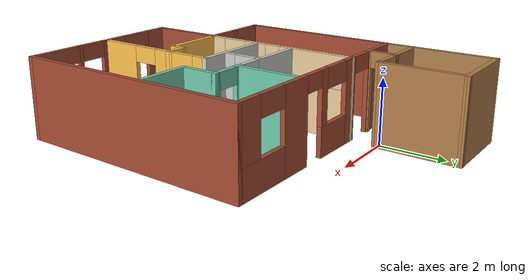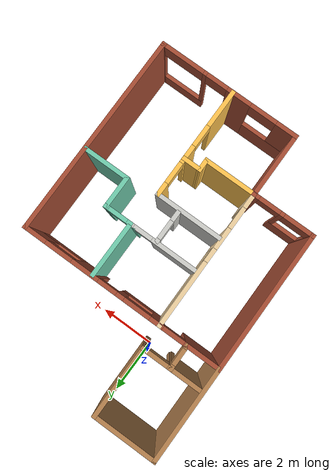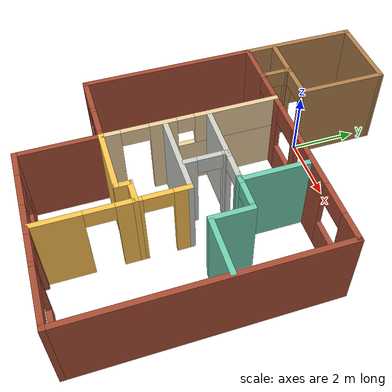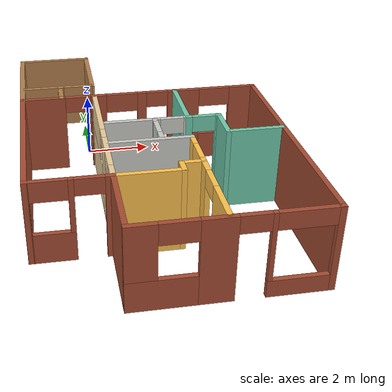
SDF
<?xml version='1.0'?>
<sdf version='1.6'>
  <model name='Building'>
    <pose frame=''>1.6411 -2.93 0 0 -0 0</pose>
    <link name='Wall_101'>
      <collision name='Wall_101_Collision'>
        <geometry>
          <box>
            <size>3.5 0.15 2.5</size>
          </box>
        </geometry>
        <pose frame=''>0 0 1.25 0 -0 0</pose>
      </collision>
      <visual name='Wall_101_Visual'>
        <pose frame=''>0 0 1.25 0 -0 0</pose>
        <geometry>
          <box>
            <size>3.5 0.15 2.5</size>
          </box>
        </geometry>
        <material>
          <script>
            <uri>file://media/materials/scripts/gazebo.material</uri>
            <name>Gazebo/Wood</name>
          </script>
          <ambient>1 1 1 1</ambient>
        </material>
        <meta>
          <layer>0</layer>
        </meta>
      </visual>
      <pose frame=''>-3.72481 3.67494 0 0 -0 1.5708</pose>
    </link>
    <link name='Wall_107'>
      <collision name='Wall_107_Collision'>
        <geometry>
          <box>
            <size>2.39871 0.15 2.5</size>
          </box>
        </geometry>
        <pose frame=''>0 0 1.25 0 -0 0</pose>
      </collision>
      <visual name='Wall_107_Visual'>
        <pose frame=''>0 0 1.25 0 -0 0</pose>
        <geometry>
          <box>
            <size>2.39871 0.15 2.5</size>
          </box>
        </geometry>
        <material>
          <script>
            <uri>file://media/materials/scripts/gazebo.material</uri>
            <name>Gazebo/Wood</name>
          </script>
          <ambient>1 1 1 1</ambient>
        </material>
        <meta>
          <layer>0</layer>
        </meta>
      </visual>
      <pose frame=''>-2.60045 5.34997 0 0 -0 2.5e-05</pose>
    </link>
    <link name='Wall_109'>
      <pose frame=''>-2.5181 2.433 0 0 -0 1.5708</pose>
      <visual name='Wall_109_Visual_0'>
        <pose frame=''>-0.406862 0 1.25 0 -0 0</pose>
        <geometry>
          <box>
            <size>0.186276 0.15 2.5</size>
          </box>
        </geometry>
        <material>
          <script>
            <uri>file://media/materials/scripts/gazebo.material</uri>
            <name>Gazebo/Wood</name>
          </script>
          <ambient>1 1 1 1</ambient>
        </material>
        <meta>
          <layer>0</layer>
        </meta>
      </visual>
      <collision name='Wall_109_Collision_0'>
        <geometry>
          <box>
            <size>0.186276 0.15 2.5</size>
          </box>
        </geometry>
        <pose frame=''>-0.406862 0 1.25 0 -0 0</pose>
      </collision>
      <visual name='Wall_109_Visual_1'>
        <pose frame=''>0.393138 0 1.25 0 -0 0</pose>
        <geometry>
          <box>
            <size>0.213724 0.15 2.5</size>
          </box>
        </geometry>
        <material>
          <script>
            <uri>file://media/materials/scripts/gazebo.material</uri>
            <name>Gazebo/Wood</name>
          </script>
          <ambient>1 1 1 1</ambient>
        </material>
        <meta>
          <layer>0</layer>
        </meta>
      </visual>
      <collision name='Wall_109_Collision_1'>
        <geometry>
          <box>
            <size>0.213724 0.15 2.5</size>
          </box>
        </geometry>
        <pose frame=''>0.393138 0 1.25 0 -0 0</pose>
      </collision>
      <visual name='Wall_109_Visual_2'>
        <pose frame=''>-0.013724 0 2.25 0 -0 0</pose>
        <geometry>
          <box>
            <size>0.6 0.15 0.5</size>
          </box>
        </geometry>
        <material>
          <script>
            <uri>file://media/materials/scripts/gazebo.material</uri>
            <name>Gazebo/Wood</name>
          </script>
          <ambient>1 1 1 1</ambient>
        </material>
        <meta>
          <layer>0</layer>
        </meta>
      </visual>
      <collision name='Wall_109_Collision_2'>
        <geometry>
          <box>
            <size>0.6 0.15 0.5</size>
          </box>
        </geometry>
        <pose frame=''>-0.013724 0 2.25 0 -0 0</pose>
      </collision>
    </link>
    <link name='Wall_111'>
      <collision name='Wall_111_Collision'>
        <geometry>
          <box>
            <size>1.2505 0.15 2.5</size>
          </box>
        </geometry>
        <pose frame=''>0 0 1.25 0 -0 0</pose>
      </collision>
      <visual name='Wall_111_Visual'>
        <pose frame=''>0 0 1.25 0 -0 0</pose>
        <geometry>
          <box>
            <size>1.2505 0.15 2.5</size>
          </box>
        </geometry>
        <material>
          <script>
            <uri>file://media/materials/scripts/gazebo.material</uri>
            <name>Gazebo/Wood</name>
          </script>
          <ambient>1 1 1 1</ambient>
        </material>
        <meta>
          <layer>0</layer>
        </meta>
      </visual>
      <pose frame=''>-3.06835 2.85789 0 0 0 -3.14139</pose>
    </link>
    <link name='Wall_113'>
      <pose frame=''>-1.9981 2.858 0 0 -0 0</pose>
      <visual name='Wall_113_Visual_0'>
        <pose frame=''>-0.4985 0 1.25 0 -0 0</pose>
        <geometry>
          <box>
            <size>0.193 0.15 2.5</size>
          </box>
        </geometry>
        <material>
          <script>
            <uri>file://media/materials/scripts/gazebo.material</uri>
            <name>Gazebo/Wood</name>
          </script>
          <ambient>1 1 1 1</ambient>
        </material>
        <meta>
          <layer>0</layer>
        </meta>
      </visual>
      <collision name='Wall_113_Collision_0'>
        <geometry>
          <box>
            <size>0.193 0.15 2.5</size>
          </box>
        </geometry>
        <pose frame=''>-0.4985 0 1.25 0 -0 0</pose>
      </collision>
      <visual name='Wall_113_Visual_1'>
        <pose frame=''>0.4965 0 1.25 0 -0 0</pose>
        <geometry>
          <box>
            <size>0.197 0.15 2.5</size>
          </box>
        </geometry>
        <material>
          <script>
            <uri>file://media/materials/scripts/gazebo.material</uri>
            <name>Gazebo/Wood</name>
          </script>
          <ambient>1 1 1 1</ambient>
        </material>
        <meta>
          <layer>0</layer>
        </meta>
      </visual>
      <collision name='Wall_113_Collision_1'>
        <geometry>
          <box>
            <size>0.197 0.15 2.5</size>
          </box>
        </geometry>
        <pose frame=''>0.4965 0 1.25 0 -0 0</pose>
      </collision>
      <visual name='Wall_113_Visual_2'>
        <pose frame=''>-0.002 0 2.25 0 -0 0</pose>
        <geometry>
          <box>
            <size>0.8 0.15 0.5</size>
          </box>
        </geometry>
        <material>
          <script>
            <uri>file://media/materials/scripts/gazebo.material</uri>
            <name>Gazebo/Wood</name>
          </script>
          <ambient>1 1 1 1</ambient>
        </material>
        <meta>
          <layer>0</layer>
        </meta>
      </visual>
      <collision name='Wall_113_Collision_2'>
        <geometry>
          <box>
            <size>0.8 0.15 0.5</size>
          </box>
        </geometry>
        <pose frame=''>-0.002 0 2.25 0 -0 0</pose>
      </collision>
    </link>
    <link name='Wall_115'>
      <collision name='Wall_115_Collision'>
        <geometry>
          <box>
            <size>2.642 0.15 2.5</size>
          </box>
        </geometry>
        <pose frame=''>0 0 1.25 0 -0 0</pose>
      </collision>
      <visual name='Wall_115_Visual'>
        <pose frame=''>0 0 1.25 0 -0 0</pose>
        <geometry>
          <box>
            <size>2.642 0.15 2.5</size>
          </box>
        </geometry>
        <material>
          <script>
            <uri>file://media/materials/scripts/gazebo.material</uri>
            <name>Gazebo/Wood</name>
          </script>
          <ambient>1 1 1 1</ambient>
        </material>
        <meta>
          <layer>0</layer>
        </meta>
      </visual>
      <pose frame=''>-1.4771 4.104 0 0 -0 1.56999</pose>
    </link>
    <link name='Wall_25'>
      <collision name='Wall_25_Collision'>
        <geometry>
          <box>
            <size>5.2 0.15 2.5</size>
          </box>
        </geometry>
        <pose frame=''>0 0 1.25 0 -0 0</pose>
      </collision>
      <visual name='Wall_25_Visual'>
        <pose frame=''>0 0 1.25 0 -0 0</pose>
        <geometry>
          <box>
            <size>5.2 0.15 2.5</size>
          </box>
        </geometry>
        <material>
          <script>
            <uri>file://media/materials/scripts/gazebo.material</uri>
            <name>Gazebo/Bricks</name>
          </script>
          <ambient>1 1 1 1</ambient>
        </material>
        <meta>
          <layer>0</layer>
        </meta>
      </visual>
      <pose frame=''>-3.72495 -0.52503 0 0 0 -1.57085</pose>
    </link>
    <link name='Wall_27'>
      <pose frame=''>-2.6006 -3.05 0 0 -0 0</pose>
      <visual name='Wall_27_Visual_0'>
        <pose frame=''>-1.11544 0 1.25 0 -0 0</pose>
        <geometry>
          <box>
            <size>0.168303 0.15 2.5</size>
          </box>
        </geometry>
        <material>
          <script>
            <uri>file://media/materials/scripts/gazebo.material</uri>
            <name>Gazebo/Bricks</name>
          </script>
          <ambient>0.760784 0.662745 0.627451 1</ambient>
        </material>
        <meta>
          <layer>0</layer>
        </meta>
      </visual>
      <collision name='Wall_27_Collision_0'>
        <geometry>
          <box>
            <size>0.168303 0.15 2.5</size>
          </box>
        </geometry>
        <pose frame=''>-1.11544 0 1.25 0 -0 0</pose>
      </collision>
      <visual name='Wall_27_Visual_1'>
        <pose frame=''>1.05915 0 1.25 0 -0 0</pose>
        <geometry>
          <box>
            <size>0.28088 0.15 2.5</size>
          </box>
        </geometry>
        <material>
          <script>
            <uri>file://media/materials/scripts/gazebo.material</uri>
            <name>Gazebo/Bricks</name>
          </script>
          <ambient>0.760784 0.662745 0.627451 1</ambient>
        </material>
        <meta>
          <layer>0</layer>
        </meta>
      </visual>
      <collision name='Wall_27_Collision_1'>
        <geometry>
          <box>
            <size>0.28088 0.15 2.5</size>
          </box>
        </geometry>
        <pose frame=''>1.05915 0 1.25 0 -0 0</pose>
      </collision>
      <visual name='Wall_27_Visual_2'>
        <pose frame=''>-0.456289 0 0.45 0 -0 0</pose>
        <geometry>
          <box>
            <size>1.15 0.15 0.9</size>
          </box>
        </geometry>
        <material>
          <script>
            <uri>file://media/materials/scripts/gazebo.material</uri>
            <name>Gazebo/Bricks</name>
          </script>
          <ambient>0.760784 0.662745 0.627451 1</ambient>
        </material>
        <meta>
          <layer>0</layer>
        </meta>
      </visual>
      <collision name='Wall_27_Collision_2'>
        <geometry>
          <box>
            <size>1.15 0.15 0.9</size>
          </box>
        </geometry>
        <pose frame=''>-0.456289 0 0.45 0 -0 0</pose>
      </collision>
      <visual name='Wall_27_Visual_3'>
        <pose frame=''>0.043711 0 1.7 0 -0 0</pose>
        <geometry>
          <box>
            <size>0.15 0.15 1.6</size>
          </box>
        </geometry>
        <material>
          <script>
            <uri>file://media/materials/scripts/gazebo.material</uri>
            <name>Gazebo/Bricks</name>
          </script>
          <ambient>0.760784 0.662745 0.627451 1</ambient>
        </material>
        <meta>
          <layer>0</layer>
        </meta>
      </visual>
      <collision name='Wall_27_Collision_3'>
        <geometry>
          <box>
            <size>0.15 0.15 1.6</size>
          </box>
        </geometry>
        <pose frame=''>0.043711 0 1.7 0 -0 0</pose>
      </collision>
      <visual name='Wall_27_Visual_4'>
        <pose frame=''>-0.531289 0 2.2 0 -0 0</pose>
        <geometry>
          <box>
            <size>1 0.15 0.6</size>
          </box>
        </geometry>
        <material>
          <script>
            <uri>file://media/materials/scripts/gazebo.material</uri>
            <name>Gazebo/Bricks</name>
          </script>
          <ambient>0.760784 0.662745 0.627451 1</ambient>
        </material>
        <meta>
          <layer>0</layer>
        </meta>
      </visual>
      <collision name='Wall_27_Collision_4'>
        <geometry>
          <box>
            <size>1 0.15 0.6</size>
          </box>
        </geometry>
        <pose frame=''>-0.531289 0 2.2 0 -0 0</pose>
      </collision>
      <visual name='Wall_27_Visual_5'>
        <pose frame=''>0.518711 0 2.25 0 -0 0</pose>
        <geometry>
          <box>
            <size>0.8 0.15 0.5</size>
          </box>
        </geometry>
        <material>
          <script>
            <uri>file://media/materials/scripts/gazebo.material</uri>
            <name>Gazebo/Bricks</name>
          </script>
          <ambient>0.760784 0.662745 0.627451 1</ambient>
        </material>
        <meta>
          <layer>0</layer>
        </meta>
      </visual>
      <collision name='Wall_27_Collision_5'>
        <geometry>
          <box>
            <size>0.8 0.15 0.5</size>
          </box>
        </geometry>
        <pose frame=''>0.518711 0 2.25 0 -0 0</pose>
      </collision>
    </link>
    <link name='Wall_29'>
      <collision name='Wall_29_Collision'>
        <geometry>
          <box>
            <size>2.30006 0.15 2.5</size>
          </box>
        </geometry>
        <pose frame=''>0 0 1.25 0 -0 0</pose>
      </collision>
      <visual name='Wall_29_Visual'>
        <pose frame=''>0 0 1.25 0 -0 0</pose>
        <geometry>
          <box>
            <size>2.30006 0.15 2.5</size>
          </box>
        </geometry>
        <material>
          <script>
            <uri>file://media/materials/scripts/gazebo.material</uri>
            <name>Gazebo/Bricks</name>
          </script>
          <ambient>1 1 1 1</ambient>
        </material>
        <meta>
          <layer>0</layer>
        </meta>
      </visual>
      <pose frame=''>-1.4761 -4.125 0 0 0 -1.5708</pose>
    </link>
    <link name='Wall_32'>
      <collision name='Wall_32_Collision'>
        <geometry>
          <box>
            <size>7.5 0.15 2.5</size>
          </box>
        </geometry>
        <pose frame=''>0 0 1.25 0 -0 0</pose>
      </collision>
      <visual name='Wall_32_Visual'>
        <pose frame=''>0 0 1.25 0 -0 0</pose>
        <geometry>
          <box>
            <size>7.5 0.15 2.5</size>
          </box>
        </geometry>
        <material>
          <script>
            <uri>file://media/materials/scripts/gazebo.material</uri>
            <name>Gazebo/Bricks</name>
          </script>
          <ambient>1 1 1 1</ambient>
        </material>
        <meta>
          <layer>0</layer>
        </meta>
      </visual>
      <pose frame=''>3.72519 -1.67506 0 0 0 -1.5708</pose>
    </link>
    <link name='Wall_34'>
      <pose frame=''>1.12519 -5.35006 0 0 -0 3.14159</pose>
      <visual name='Wall_34_Visual_0'>
        <pose frame=''>-2.58626 0 1.25 0 -0 0</pose>
        <geometry>
          <box>
            <size>0.177479 0.15 2.5</size>
          </box>
        </geometry>
        <material>
          <script>
            <uri>file://media/materials/scripts/gazebo.material</uri>
            <name>Gazebo/Bricks</name>
          </script>
          <ambient>1 1 1 1</ambient>
        </material>
        <meta>
          <layer>0</layer>
        </meta>
      </visual>
      <collision name='Wall_34_Collision_0'>
        <geometry>
          <box>
            <size>0.177479 0.15 2.5</size>
          </box>
        </geometry>
        <pose frame=''>-2.58626 0 1.25 0 -0 0</pose>
      </collision>
      <visual name='Wall_34_Visual_1'>
        <pose frame=''>0.393157 0 1.25 0 -0 0</pose>
        <geometry>
          <box>
            <size>0.919189 0.15 2.5</size>
          </box>
        </geometry>
        <material>
          <script>
            <uri>file://media/materials/scripts/gazebo.material</uri>
            <name>Gazebo/Bricks</name>
          </script>
          <ambient>1 1 1 1</ambient>
        </material>
        <meta>
          <layer>0</layer>
        </meta>
      </visual>
      <collision name='Wall_34_Collision_1'>
        <geometry>
          <box>
            <size>0.919189 0.15 2.5</size>
          </box>
        </geometry>
        <pose frame=''>0.393157 0 1.25 0 -0 0</pose>
      </collision>
      <visual name='Wall_34_Visual_2'>
        <pose frame=''>-1.68198 0 0.25 0 -0 0</pose>
        <geometry>
          <box>
            <size>1.63108 0.15 0.5</size>
          </box>
        </geometry>
        <material>
          <script>
            <uri>file://media/materials/scripts/gazebo.material</uri>
            <name>Gazebo/Bricks</name>
          </script>
          <ambient>1 1 1 1</ambient>
        </material>
        <meta>
          <layer>0</layer>
        </meta>
      </visual>
      <collision name='Wall_34_Collision_2'>
        <geometry>
          <box>
            <size>1.63108 0.15 0.5</size>
          </box>
        </geometry>
        <pose frame=''>-1.68198 0 0.25 0 -0 0</pose>
      </collision>
      <visual name='Wall_34_Visual_3'>
        <pose frame=''>1.76388 0 0.45 0 -0 0</pose>
        <geometry>
          <box>
            <size>1.82225 0.15 0.9</size>
          </box>
        </geometry>
        <material>
          <script>
            <uri>file://media/materials/scripts/gazebo.material</uri>
            <name>Gazebo/Bricks</name>
          </script>
          <ambient>1 1 1 1</ambient>
        </material>
        <meta>
          <layer>0</layer>
        </meta>
      </visual>
      <collision name='Wall_34_Collision_3'>
        <geometry>
          <box>
            <size>1.82225 0.15 0.9</size>
          </box>
        </geometry>
        <pose frame=''>1.76388 0 0.45 0 -0 0</pose>
      </collision>
      <visual name='Wall_34_Visual_4'>
        <pose frame=''>-0.931979 0 1.5 0 -0 0</pose>
        <geometry>
          <box>
            <size>0.131083 0.15 2</size>
          </box>
        </geometry>
        <material>
          <script>
            <uri>file://media/materials/scripts/gazebo.material</uri>
            <name>Gazebo/Bricks</name>
          </script>
          <ambient>1 1 1 1</ambient>
        </material>
        <meta>
          <layer>0</layer>
        </meta>
      </visual>
      <collision name='Wall_34_Collision_4'>
        <geometry>
          <box>
            <size>0.131083 0.15 2</size>
          </box>
        </geometry>
        <pose frame=''>-0.931979 0 1.5 0 -0 0</pose>
      </collision>
      <visual name='Wall_34_Visual_5'>
        <pose frame=''>2.26388 0 1.7 0 -0 0</pose>
        <geometry>
          <box>
            <size>0.822249 0.15 1.6</size>
          </box>
        </geometry>
        <material>
          <script>
            <uri>file://media/materials/scripts/gazebo.material</uri>
            <name>Gazebo/Bricks</name>
          </script>
          <ambient>1 1 1 1</ambient>
        </material>
        <meta>
          <layer>0</layer>
        </meta>
      </visual>
      <collision name='Wall_34_Collision_5'>
        <geometry>
          <box>
            <size>0.822249 0.15 1.6</size>
          </box>
        </geometry>
        <pose frame=''>2.26388 0 1.7 0 -0 0</pose>
      </collision>
      <visual name='Wall_34_Visual_6'>
        <pose frame=''>1.35275 0 2.2 0 -0 0</pose>
        <geometry>
          <box>
            <size>1 0.15 0.6</size>
          </box>
        </geometry>
        <material>
          <script>
            <uri>file://media/materials/scripts/gazebo.material</uri>
            <name>Gazebo/Bricks</name>
          </script>
          <ambient>1 1 1 1</ambient>
        </material>
        <meta>
          <layer>0</layer>
        </meta>
      </visual>
      <collision name='Wall_34_Collision_6'>
        <geometry>
          <box>
            <size>1 0.15 0.6</size>
          </box>
        </geometry>
        <pose frame=''>1.35275 0 2.2 0 -0 0</pose>
      </collision>
      <visual name='Wall_34_Visual_7'>
        <pose frame=''>-1.74752 0 2.25 0 -0 0</pose>
        <geometry>
          <box>
            <size>1.5 0.15 0.5</size>
          </box>
        </geometry>
        <material>
          <script>
            <uri>file://media/materials/scripts/gazebo.material</uri>
            <name>Gazebo/Bricks</name>
          </script>
          <ambient>1 1 1 1</ambient>
        </material>
        <meta>
          <layer>0</layer>
        </meta>
      </visual>
      <collision name='Wall_34_Collision_7'>
        <geometry>
          <box>
            <size>1.5 0.15 0.5</size>
          </box>
        </geometry>
        <pose frame=''>-1.74752 0 2.25 0 -0 0</pose>
      </collision>
      <visual name='Wall_34_Visual_8'>
        <pose frame=''>-0.466438 0 2.25 0 -0 0</pose>
        <geometry>
          <box>
            <size>0.8 0.15 0.5</size>
          </box>
        </geometry>
        <material>
          <script>
            <uri>file://media/materials/scripts/gazebo.material</uri>
            <name>Gazebo/Bricks</name>
          </script>
          <ambient>1 1 1 1</ambient>
        </material>
        <meta>
          <layer>0</layer>
        </meta>
      </visual>
      <collision name='Wall_34_Collision_8'>
        <geometry>
          <box>
            <size>0.8 0.15 0.5</size>
          </box>
        </geometry>
        <pose frame=''>-0.466438 0 2.25 0 -0 0</pose>
      </collision>
    </link>
    <link name='Wall_39'>
      <pose frame=''>-1.4761 -0.525002 0 0 -0 1.5708</pose>
      <visual name='Wall_39_Visual_0'>
        <pose frame=''>-2.29749 0 1.25 0 -0 0</pose>
        <geometry>
          <box>
            <size>0.604971 0.15 2.5</size>
          </box>
        </geometry>
        <material>
          <script>
            <uri>file://media/materials/scripts/gazebo.material</uri>
            <name>Gazebo/Grey</name>
          </script>
          <ambient>0.921569 0.807843 0.615686 1</ambient>
        </material>
        <meta>
          <layer>0</layer>
        </meta>
      </visual>
      <collision name='Wall_39_Collision_0'>
        <geometry>
          <box>
            <size>0.604971 0.15 2.5</size>
          </box>
        </geometry>
        <pose frame=''>-2.29749 0 1.25 0 -0 0</pose>
      </collision>
      <visual name='Wall_39_Visual_1'>
        <pose frame=''>-0.798602 0 1.25 0 -0 0</pose>
        <geometry>
          <box>
            <size>0.792797 0.15 2.5</size>
          </box>
        </geometry>
        <material>
          <script>
            <uri>file://media/materials/scripts/gazebo.material</uri>
            <name>Gazebo/Grey</name>
          </script>
          <ambient>0.921569 0.807843 0.615686 1</ambient>
        </material>
        <meta>
          <layer>0</layer>
        </meta>
      </visual>
      <collision name='Wall_39_Collision_1'>
        <geometry>
          <box>
            <size>0.792797 0.15 2.5</size>
          </box>
        </geometry>
        <pose frame=''>-0.798602 0 1.25 0 -0 0</pose>
      </collision>
      <visual name='Wall_39_Visual_2'>
        <pose frame=''>1.09888 0 0.75 0 -0 0</pose>
        <geometry>
          <box>
            <size>3.00217 0.15 1.5</size>
          </box>
        </geometry>
        <material>
          <script>
            <uri>file://media/materials/scripts/gazebo.material</uri>
            <name>Gazebo/Grey</name>
          </script>
          <ambient>0.921569 0.807843 0.615686 1</ambient>
        </material>
        <meta>
          <layer>0</layer>
        </meta>
      </visual>
      <collision name='Wall_39_Collision_2'>
        <geometry>
          <box>
            <size>3.00217 0.15 1.5</size>
          </box>
        </geometry>
        <pose frame=''>1.09888 0 0.75 0 -0 0</pose>
      </collision>
      <visual name='Wall_39_Visual_3'>
        <pose frame=''>1.34888 0 2 0 -0 0</pose>
        <geometry>
          <box>
            <size>2.50217 0.15 1</size>
          </box>
        </geometry>
        <material>
          <script>
            <uri>file://media/materials/scripts/gazebo.material</uri>
            <name>Gazebo/Grey</name>
          </script>
          <ambient>0.921569 0.807843 0.615686 1</ambient>
        </material>
        <meta>
          <layer>0</layer>
        </meta>
      </visual>
      <collision name='Wall_39_Collision_3'>
        <geometry>
          <box>
            <size>2.50217 0.15 1</size>
          </box>
        </geometry>
        <pose frame=''>1.34888 0 2 0 -0 0</pose>
      </collision>
      <visual name='Wall_39_Visual_4'>
        <pose frame=''>-1.595 0 2.25 0 -0 0</pose>
        <geometry>
          <box>
            <size>0.8 0.15 0.5</size>
          </box>
        </geometry>
        <material>
          <script>
            <uri>file://media/materials/scripts/gazebo.material</uri>
            <name>Gazebo/Grey</name>
          </script>
          <ambient>0.921569 0.807843 0.615686 1</ambient>
        </material>
        <meta>
          <layer>0</layer>
        </meta>
      </visual>
      <collision name='Wall_39_Collision_4'>
        <geometry>
          <box>
            <size>0.8 0.15 0.5</size>
          </box>
        </geometry>
        <pose frame=''>-1.595 0 2.25 0 -0 0</pose>
      </collision>
      <visual name='Wall_39_Visual_5'>
        <pose frame=''>-0.152203 0 2.25 0 -0 0</pose>
        <geometry>
          <box>
            <size>0.5 0.15 0.5</size>
          </box>
        </geometry>
        <material>
          <script>
            <uri>file://media/materials/scripts/gazebo.material</uri>
            <name>Gazebo/Grey</name>
          </script>
          <ambient>0.921569 0.807843 0.615686 1</ambient>
        </material>
        <meta>
          <layer>0</layer>
        </meta>
      </visual>
      <collision name='Wall_39_Collision_5'>
        <geometry>
          <box>
            <size>0.5 0.15 0.5</size>
          </box>
        </geometry>
        <pose frame=''>-0.152203 0 2.25 0 -0 0</pose>
      </collision>
    </link>
    <link name='Wall_4'>
      <pose frame=''>0.000193 1.99994 0 0 -0 0</pose>
      <visual name='Wall_4_Visual_0'>
        <pose frame=''>-3.10005 0 1.25 0 -0 0</pose>
        <geometry>
          <box>
            <size>1.39989 0.15 2.5</size>
          </box>
        </geometry>
        <material>
          <script>
            <uri>file://media/materials/scripts/gazebo.material</uri>
            <name>Gazebo/Bricks</name>
          </script>
          <ambient>1 1 1 1</ambient>
        </material>
        <meta>
          <layer>0</layer>
        </meta>
      </visual>
      <collision name='Wall_4_Collision_0'>
        <geometry>
          <box>
            <size>1.39989 0.15 2.5</size>
          </box>
        </geometry>
        <pose frame=''>-3.10005 0 1.25 0 -0 0</pose>
      </collision>
      <visual name='Wall_4_Visual_1'>
        <pose frame=''>-1.34947 0 1.25 0 -0 0</pose>
        <geometry>
          <box>
            <size>0.501265 0.15 2.5</size>
          </box>
        </geometry>
        <material>
          <script>
            <uri>file://media/materials/scripts/gazebo.material</uri>
            <name>Gazebo/Bricks</name>
          </script>
          <ambient>1 1 1 1</ambient>
        </material>
        <meta>
          <layer>0</layer>
        </meta>
      </visual>
      <collision name='Wall_4_Collision_1'>
        <geometry>
          <box>
            <size>0.501265 0.15 2.5</size>
          </box>
        </geometry>
        <pose frame=''>-1.34947 0 1.25 0 -0 0</pose>
      </collision>
      <visual name='Wall_4_Visual_2'>
        <pose frame=''>1.40766 0 1.25 0 -0 0</pose>
        <geometry>
          <box>
            <size>1.036 0.15 2.5</size>
          </box>
        </geometry>
        <material>
          <script>
            <uri>file://media/materials/scripts/gazebo.material</uri>
            <name>Gazebo/Bricks</name>
          </script>
          <ambient>1 1 1 1</ambient>
        </material>
        <meta>
          <layer>0</layer>
        </meta>
      </visual>
      <collision name='Wall_4_Collision_2'>
        <geometry>
          <box>
            <size>1.036 0.15 2.5</size>
          </box>
        </geometry>
        <pose frame=''>1.40766 0 1.25 0 -0 0</pose>
      </collision>
      <visual name='Wall_4_Visual_3'>
        <pose frame=''>-0.454591 0 0.45 0 -0 0</pose>
        <geometry>
          <box>
            <size>1.2885 0.15 0.9</size>
          </box>
        </geometry>
        <material>
          <script>
            <uri>file://media/materials/scripts/gazebo.material</uri>
            <name>Gazebo/Bricks</name>
          </script>
          <ambient>1 1 1 1</ambient>
        </material>
        <meta>
          <layer>0</layer>
        </meta>
      </visual>
      <collision name='Wall_4_Collision_3'>
        <geometry>
          <box>
            <size>1.2885 0.15 0.9</size>
          </box>
        </geometry>
        <pose frame=''>-0.454591 0 0.45 0 -0 0</pose>
      </collision>
      <visual name='Wall_4_Visual_4'>
        <pose frame=''>2.86283 0 0.45 0 -0 0</pose>
        <geometry>
          <box>
            <size>1.87434 0.15 0.9</size>
          </box>
        </geometry>
        <material>
          <script>
            <uri>file://media/materials/scripts/gazebo.material</uri>
            <name>Gazebo/Bricks</name>
          </script>
          <ambient>1 1 1 1</ambient>
        </material>
        <meta>
          <layer>0</layer>
        </meta>
      </visual>
      <collision name='Wall_4_Collision_4'>
        <geometry>
          <box>
            <size>1.87434 0.15 0.9</size>
          </box>
        </geometry>
        <pose frame=''>2.86283 0 0.45 0 -0 0</pose>
      </collision>
      <visual name='Wall_4_Visual_5'>
        <pose frame=''>0.045409 0 1.7 0 -0 0</pose>
        <geometry>
          <box>
            <size>0.2885 0.15 1.6</size>
          </box>
        </geometry>
        <material>
          <script>
            <uri>file://media/materials/scripts/gazebo.material</uri>
            <name>Gazebo/Bricks</name>
          </script>
          <ambient>1 1 1 1</ambient>
        </material>
        <meta>
          <layer>0</layer>
        </meta>
      </visual>
      <collision name='Wall_4_Collision_5'>
        <geometry>
          <box>
            <size>0.2885 0.15 1.6</size>
          </box>
        </geometry>
        <pose frame=''>0.045409 0 1.7 0 -0 0</pose>
      </collision>
      <visual name='Wall_4_Visual_6'>
        <pose frame=''>0.045409 0 1.7 0 -0 0</pose>
        <geometry>
          <box>
            <size>0.2885 0.15 1.6</size>
          </box>
        </geometry>
        <material>
          <script>
            <uri>file://media/materials/scripts/gazebo.material</uri>
            <name>Gazebo/Bricks</name>
          </script>
          <ambient>1 1 1 1</ambient>
        </material>
        <meta>
          <layer>0</layer>
        </meta>
      </visual>
      <collision name='Wall_4_Collision_6'>
        <geometry>
          <box>
            <size>0.2885 0.15 1.6</size>
          </box>
        </geometry>
        <pose frame=''>0.045409 0 1.7 0 -0 0</pose>
      </collision>
      <visual name='Wall_4_Visual_7'>
        <pose frame=''>3.36283 0 1.7 0 -0 0</pose>
        <geometry>
          <box>
            <size>0.874341 0.15 1.6</size>
          </box>
        </geometry>
        <material>
          <script>
            <uri>file://media/materials/scripts/gazebo.material</uri>
            <name>Gazebo/Bricks</name>
          </script>
          <ambient>1 1 1 1</ambient>
        </material>
        <meta>
          <layer>0</layer>
        </meta>
      </visual>
      <collision name='Wall_4_Collision_7'>
        <geometry>
          <box>
            <size>0.874341 0.15 1.6</size>
          </box>
        </geometry>
        <pose frame=''>3.36283 0 1.7 0 -0 0</pose>
      </collision>
      <visual name='Wall_4_Visual_8'>
        <pose frame=''>-0.598841 0 2.2 0 -0 0</pose>
        <geometry>
          <box>
            <size>1 0.15 0.6</size>
          </box>
        </geometry>
        <material>
          <script>
            <uri>file://media/materials/scripts/gazebo.material</uri>
            <name>Gazebo/Bricks</name>
          </script>
          <ambient>1 1 1 1</ambient>
        </material>
        <meta>
          <layer>0</layer>
        </meta>
      </visual>
      <collision name='Wall_4_Collision_8'>
        <geometry>
          <box>
            <size>1 0.15 0.6</size>
          </box>
        </geometry>
        <pose frame=''>-0.598841 0 2.2 0 -0 0</pose>
      </collision>
      <visual name='Wall_4_Visual_9'>
        <pose frame=''>2.42566 0 2.2 0 -0 0</pose>
        <geometry>
          <box>
            <size>1 0.15 0.6</size>
          </box>
        </geometry>
        <material>
          <script>
            <uri>file://media/materials/scripts/gazebo.material</uri>
            <name>Gazebo/Bricks</name>
          </script>
          <ambient>1 1 1 1</ambient>
        </material>
        <meta>
          <layer>0</layer>
        </meta>
      </visual>
      <collision name='Wall_4_Collision_9'>
        <geometry>
          <box>
            <size>1 0.15 0.6</size>
          </box>
        </geometry>
        <pose frame=''>2.42566 0 2.2 0 -0 0</pose>
      </collision>
      <visual name='Wall_4_Visual_10'>
        <pose frame=''>-2.00011 0 2.25 0 -0 0</pose>
        <geometry>
          <box>
            <size>0.8 0.15 0.5</size>
          </box>
        </geometry>
        <material>
          <script>
            <uri>file://media/materials/scripts/gazebo.material</uri>
            <name>Gazebo/Bricks</name>
          </script>
          <ambient>1 1 1 1</ambient>
        </material>
        <meta>
          <layer>0</layer>
        </meta>
      </visual>
      <collision name='Wall_4_Collision_10'>
        <geometry>
          <box>
            <size>0.8 0.15 0.5</size>
          </box>
        </geometry>
        <pose frame=''>-2.00011 0 2.25 0 -0 0</pose>
      </collision>
      <visual name='Wall_4_Visual_11'>
        <pose frame=''>0.539659 0 2.25 0 -0 0</pose>
        <geometry>
          <box>
            <size>0.7 0.15 0.5</size>
          </box>
        </geometry>
        <material>
          <script>
            <uri>file://media/materials/scripts/gazebo.material</uri>
            <name>Gazebo/Bricks</name>
          </script>
          <ambient>1 1 1 1</ambient>
        </material>
        <meta>
          <layer>0</layer>
        </meta>
      </visual>
      <collision name='Wall_4_Collision_11'>
        <geometry>
          <box>
            <size>0.7 0.15 0.5</size>
          </box>
        </geometry>
        <pose frame=''>0.539659 0 2.25 0 -0 0</pose>
      </collision>
      <visual name='Wall_4_Visual_12'>
        <pose frame=''>0.539659 0 2.25 0 -0 0</pose>
        <geometry>
          <box>
            <size>0.7 0.15 0.5</size>
          </box>
        </geometry>
        <material>
          <script>
            <uri>file://media/materials/scripts/gazebo.material</uri>
            <name>Gazebo/Bricks</name>
          </script>
          <ambient>1 1 1 1</ambient>
        </material>
        <meta>
          <layer>0</layer>
        </meta>
      </visual>
      <collision name='Wall_4_Collision_12'>
        <geometry>
          <box>
            <size>0.7 0.15 0.5</size>
          </box>
        </geometry>
        <pose frame=''>0.539659 0 2.25 0 -0 0</pose>
      </collision>
    </link>
    <link name='Wall_41'>
      <collision name='Wall_41_Collision'>
        <geometry>
          <box>
            <size>2.00086 0.15 2.5</size>
          </box>
        </geometry>
        <pose frame=''>0 0 1.25 0 -0 0</pose>
      </collision>
      <visual name='Wall_41_Visual'>
        <pose frame=''>0 0 1.25 0 -0 0</pose>
        <geometry>
          <box>
            <size>2.00086 0.15 2.5</size>
          </box>
        </geometry>
        <material>
          <script>
            <uri>file://media/materials/scripts/gazebo.material</uri>
            <name>Gazebo/Grey</name>
          </script>
          <ambient>1 0.764706 0.305882 1</ambient>
        </material>
        <meta>
          <layer>0</layer>
        </meta>
      </visual>
      <pose frame=''>-0.550454 -3.05003 0 0 0 -3.1e-05</pose>
    </link>
    <link name='Wall_43'>
      <collision name='Wall_43_Collision'>
        <geometry>
          <box>
            <size>0.513225 0.15 2.5</size>
          </box>
        </geometry>
        <pose frame=''>0 0 1.25 0 -0 0</pose>
      </collision>
      <visual name='Wall_43_Visual'>
        <pose frame=''>0 0 1.25 0 -0 0</pose>
        <geometry>
          <box>
            <size>0.513225 0.15 2.5</size>
          </box>
        </geometry>
        <material>
          <script>
            <uri>file://media/materials/scripts/gazebo.material</uri>
            <name>Gazebo/Grey</name>
          </script>
          <ambient>1 0.764706 0.305882 1</ambient>
        </material>
        <meta>
          <layer>0</layer>
        </meta>
      </visual>
      <pose frame=''>0.375193 -2.86845 0 0 -0 1.5708</pose>
    </link>
    <link name='Wall_45'>
      <collision name='Wall_45_Collision'>
        <geometry>
          <box>
            <size>0.75 0.15 2.5</size>
          </box>
        </geometry>
        <pose frame=''>0 0 1.25 0 -0 0</pose>
      </collision>
      <visual name='Wall_45_Visual'>
        <pose frame=''>0 0 1.25 0 -0 0</pose>
        <geometry>
          <box>
            <size>0.75 0.15 2.5</size>
          </box>
        </geometry>
        <material>
          <script>
            <uri>file://media/materials/scripts/gazebo.material</uri>
            <name>Gazebo/Grey</name>
          </script>
          <ambient>1 0.764706 0.305882 1</ambient>
        </material>
        <meta>
          <layer>0</layer>
        </meta>
      </visual>
      <pose frame=''>0.675046 -2.68692 0 0 0 -0.000281</pose>
    </link>
    <link name='Wall_50'>
      <pose frame=''>0.975046 -4.01192 0 0 0 -1.57069</pose>
      <visual name='Wall_50_Visual_0'>
        <pose frame=''>-1.10695 0 1.25 0 -0 0</pose>
        <geometry>
          <box>
            <size>0.586109 0.15 2.5</size>
          </box>
        </geometry>
        <material>
          <script>
            <uri>file://media/materials/scripts/gazebo.material</uri>
            <name>Gazebo/Grey</name>
          </script>
          <ambient>1 0.764706 0.305882 1</ambient>
        </material>
        <meta>
          <layer>0</layer>
        </meta>
      </visual>
      <collision name='Wall_50_Collision_0'>
        <geometry>
          <box>
            <size>0.586109 0.15 2.5</size>
          </box>
        </geometry>
        <pose frame=''>-1.10695 0 1.25 0 -0 0</pose>
      </collision>
      <visual name='Wall_50_Visual_1'>
        <pose frame=''>0.693055 0 1.25 0 -0 0</pose>
        <geometry>
          <box>
            <size>1.41389 0.15 2.5</size>
          </box>
        </geometry>
        <material>
          <script>
            <uri>file://media/materials/scripts/gazebo.material</uri>
            <name>Gazebo/Grey</name>
          </script>
          <ambient>1 0.764706 0.305882 1</ambient>
        </material>
        <meta>
          <layer>0</layer>
        </meta>
      </visual>
      <collision name='Wall_50_Collision_1'>
        <geometry>
          <box>
            <size>1.41389 0.15 2.5</size>
          </box>
        </geometry>
        <pose frame=''>0.693055 0 1.25 0 -0 0</pose>
      </collision>
      <visual name='Wall_50_Visual_2'>
        <pose frame=''>-0.413891 0 2.25 0 -0 0</pose>
        <geometry>
          <box>
            <size>0.8 0.15 0.5</size>
          </box>
        </geometry>
        <material>
          <script>
            <uri>file://media/materials/scripts/gazebo.material</uri>
            <name>Gazebo/Grey</name>
          </script>
          <ambient>1 0.764706 0.305882 1</ambient>
        </material>
        <meta>
          <layer>0</layer>
        </meta>
      </visual>
      <collision name='Wall_50_Collision_2'>
        <geometry>
          <box>
            <size>0.8 0.15 0.5</size>
          </box>
        </geometry>
        <pose frame=''>-0.413891 0 2.25 0 -0 0</pose>
      </collision>
    </link>
    <link name='Wall_62'>
      <pose frame=''>0.974898 -1.982 0 0 -0 1.5708</pose>
      <visual name='Wall_62_Visual_0'>
        <pose frame=''>-0.658917 0 1.25 0 -0 0</pose>
        <geometry>
          <box>
            <size>0.241833 0.15 2.5</size>
          </box>
        </geometry>
        <material>
          <script>
            <uri>file://media/materials/scripts/gazebo.material</uri>
            <name>Gazebo/Grey</name>
          </script>
          <ambient>1 0.764706 0.305882 1</ambient>
        </material>
        <meta>
          <layer>0</layer>
        </meta>
      </visual>
      <collision name='Wall_62_Collision_0'>
        <geometry>
          <box>
            <size>0.241833 0.15 2.5</size>
          </box>
        </geometry>
        <pose frame=''>-0.658917 0 1.25 0 -0 0</pose>
      </collision>
      <visual name='Wall_62_Visual_1'>
        <pose frame=''>0.520916 0 1.25 0 -0 0</pose>
        <geometry>
          <box>
            <size>0.517833 0.15 2.5</size>
          </box>
        </geometry>
        <material>
          <script>
            <uri>file://media/materials/scripts/gazebo.material</uri>
            <name>Gazebo/Grey</name>
          </script>
          <ambient>1 0.764706 0.305882 1</ambient>
        </material>
        <meta>
          <layer>0</layer>
        </meta>
      </visual>
      <collision name='Wall_62_Collision_1'>
        <geometry>
          <box>
            <size>0.517833 0.15 2.5</size>
          </box>
        </geometry>
        <pose frame=''>0.520916 0 1.25 0 -0 0</pose>
      </collision>
      <visual name='Wall_62_Visual_2'>
        <pose frame=''>-0.138 0 2.25 0 -0 0</pose>
        <geometry>
          <box>
            <size>0.8 0.15 0.5</size>
          </box>
        </geometry>
        <material>
          <script>
            <uri>file://media/materials/scripts/gazebo.material</uri>
            <name>Gazebo/Grey</name>
          </script>
          <ambient>1 0.764706 0.305882 1</ambient>
        </material>
        <meta>
          <layer>0</layer>
        </meta>
      </visual>
      <collision name='Wall_62_Collision_2'>
        <geometry>
          <box>
            <size>0.8 0.15 0.5</size>
          </box>
        </geometry>
        <pose frame=''>-0.138 0 2.25 0 -0 0</pose>
      </collision>
    </link>
    <link name='Wall_64'>
      <collision name='Wall_64_Collision'>
        <geometry>
          <box>
            <size>2.5 0.15 2.5</size>
          </box>
        </geometry>
        <pose frame=''>0 0 1.25 0 -0 0</pose>
      </collision>
      <visual name='Wall_64_Visual'>
        <pose frame=''>0 0 1.25 0 -0 0</pose>
        <geometry>
          <box>
            <size>2.5 0.15 2.5</size>
          </box>
        </geometry>
        <material>
          <script>
            <uri>file://media/materials/scripts/gazebo.material</uri>
            <name>Gazebo/CeilingTiled</name>
          </script>
          <ambient>1 1 1 1</ambient>
        </material>
        <meta>
          <layer>0</layer>
        </meta>
      </visual>
      <pose frame=''>-0.200102 -1.277 0 0 -0 3.14159</pose>
    </link>
    <link name='Wall_77'>
      <pose frame=''>-0.200102 -0.009552 0 0 -0 3.14159</pose>
      <visual name='Wall_77_Visual_0'>
        <pose frame=''>-1.22093 0 1.25 0 -0 0</pose>
        <geometry>
          <box>
            <size>0.058144 0.15 2.5</size>
          </box>
        </geometry>
        <material>
          <script>
            <uri>file://media/materials/scripts/gazebo.material</uri>
            <name>Gazebo/CeilingTiled</name>
          </script>
          <ambient>0.760784 0.662745 0.627451 1</ambient>
        </material>
        <meta>
          <layer>0</layer>
        </meta>
      </visual>
      <collision name='Wall_77_Collision_0'>
        <geometry>
          <box>
            <size>0.058144 0.15 2.5</size>
          </box>
        </geometry>
        <pose frame=''>-1.22093 0 1.25 0 -0 0</pose>
      </collision>
      <visual name='Wall_77_Visual_1'>
        <pose frame=''>0.379072 0 1.25 0 -0 0</pose>
        <geometry>
          <box>
            <size>1.74186 0.15 2.5</size>
          </box>
        </geometry>
        <material>
          <script>
            <uri>file://media/materials/scripts/gazebo.material</uri>
            <name>Gazebo/CeilingTiled</name>
          </script>
          <ambient>0.760784 0.662745 0.627451 1</ambient>
        </material>
        <meta>
          <layer>0</layer>
        </meta>
      </visual>
      <collision name='Wall_77_Collision_1'>
        <geometry>
          <box>
            <size>1.74186 0.15 2.5</size>
          </box>
        </geometry>
        <pose frame=''>0.379072 0 1.25 0 -0 0</pose>
      </collision>
      <visual name='Wall_77_Visual_2'>
        <pose frame=''>-0.841856 0 2.25 0 -0 0</pose>
        <geometry>
          <box>
            <size>0.7 0.15 0.5</size>
          </box>
        </geometry>
        <material>
          <script>
            <uri>file://media/materials/scripts/gazebo.material</uri>
            <name>Gazebo/CeilingTiled</name>
          </script>
          <ambient>0.760784 0.662745 0.627451 1</ambient>
        </material>
        <meta>
          <layer>0</layer>
        </meta>
      </visual>
      <collision name='Wall_77_Collision_2'>
        <geometry>
          <box>
            <size>0.7 0.15 0.5</size>
          </box>
        </geometry>
        <pose frame=''>-0.841856 0 2.25 0 -0 0</pose>
      </collision>
    </link>
    <link name='Wall_86'>
      <pose frame=''>0.125549 -0.61239 0 0 0 -1.5708</pose>
      <visual name='Wall_86_Visual_0'>
        <pose frame=''>-0.544525 0 1.25 0 -0 0</pose>
        <geometry>
          <box>
            <size>0.160951 0.15 2.5</size>
          </box>
        </geometry>
        <material>
          <script>
            <uri>file://media/materials/scripts/gazebo.material</uri>
            <name>Gazebo/CeilingTiled</name>
          </script>
          <ambient>1 1 1 1</ambient>
        </material>
        <meta>
          <layer>0</layer>
        </meta>
      </visual>
      <collision name='Wall_86_Collision_0'>
        <geometry>
          <box>
            <size>0.160951 0.15 2.5</size>
          </box>
        </geometry>
        <pose frame=''>-0.544525 0 1.25 0 -0 0</pose>
      </collision>
      <visual name='Wall_86_Visual_1'>
        <pose frame=''>0.430475 0 1.25 0 -0 0</pose>
        <geometry>
          <box>
            <size>0.389049 0.15 2.5</size>
          </box>
        </geometry>
        <material>
          <script>
            <uri>file://media/materials/scripts/gazebo.material</uri>
            <name>Gazebo/CeilingTiled</name>
          </script>
          <ambient>1 1 1 1</ambient>
        </material>
        <meta>
          <layer>0</layer>
        </meta>
      </visual>
      <collision name='Wall_86_Collision_1'>
        <geometry>
          <box>
            <size>0.389049 0.15 2.5</size>
          </box>
        </geometry>
        <pose frame=''>0.430475 0 1.25 0 -0 0</pose>
      </collision>
      <visual name='Wall_86_Visual_2'>
        <pose frame=''>-0.114049 0 2.25 0 -0 0</pose>
        <geometry>
          <box>
            <size>0.7 0.15 0.5</size>
          </box>
        </geometry>
        <material>
          <script>
            <uri>file://media/materials/scripts/gazebo.material</uri>
            <name>Gazebo/CeilingTiled</name>
          </script>
          <ambient>1 1 1 1</ambient>
        </material>
        <meta>
          <layer>0</layer>
        </meta>
      </visual>
      <collision name='Wall_86_Collision_2'>
        <geometry>
          <box>
            <size>0.7 0.15 0.5</size>
          </box>
        </geometry>
        <pose frame=''>-0.114049 0 2.25 0 -0 0</pose>
      </collision>
    </link>
    <link name='Wall_88'>
      <collision name='Wall_88_Collision'>
        <geometry>
          <box>
            <size>2 0.15 2.5</size>
          </box>
        </geometry>
        <pose frame=''>0 0 1.25 0 -0 0</pose>
      </collision>
      <visual name='Wall_88_Visual'>
        <pose frame=''>0 0 1.25 0 -0 0</pose>
        <geometry>
          <box>
            <size>2 0.15 2.5</size>
          </box>
        </geometry>
        <material>
          <script>
            <uri>file://media/materials/scripts/gazebo.material</uri>
            <name>Gazebo/Grey</name>
          </script>
          <ambient>0.435294 0.796078 0.67451 1</ambient>
        </material>
        <meta>
          <layer>0</layer>
        </meta>
      </visual>
      <pose frame=''>1.12098 1.02898 0 0 0 -1.5708</pose>
    </link>
    <link name='Wall_94'>
      <pose frame=''>1.5249 -0.009552 0 0 -0 0</pose>
      <visual name='Wall_94_Visual_0'>
        <pose frame=''>-0.445797 0 1.25 0 -0 0</pose>
        <geometry>
          <box>
            <size>0.358405 0.15 2.5</size>
          </box>
        </geometry>
        <material>
          <script>
            <uri>file://media/materials/scripts/gazebo.material</uri>
            <name>Gazebo/Grey</name>
          </script>
          <ambient>0.435294 0.796078 0.67451 1</ambient>
        </material>
        <meta>
          <layer>0</layer>
        </meta>
      </visual>
      <collision name='Wall_94_Collision_0'>
        <geometry>
          <box>
            <size>0.358405 0.15 2.5</size>
          </box>
        </geometry>
        <pose frame=''>-0.445797 0 1.25 0 -0 0</pose>
      </collision>
      <visual name='Wall_94_Visual_1'>
        <pose frame=''>0.529203 0 1.25 0 -0 0</pose>
        <geometry>
          <box>
            <size>0.191595 0.15 2.5</size>
          </box>
        </geometry>
        <material>
          <script>
            <uri>file://media/materials/scripts/gazebo.material</uri>
            <name>Gazebo/Grey</name>
          </script>
          <ambient>0.435294 0.796078 0.67451 1</ambient>
        </material>
        <meta>
          <layer>0</layer>
        </meta>
      </visual>
      <collision name='Wall_94_Collision_1'>
        <geometry>
          <box>
            <size>0.191595 0.15 2.5</size>
          </box>
        </geometry>
        <pose frame=''>0.529203 0 1.25 0 -0 0</pose>
      </collision>
      <visual name='Wall_94_Visual_2'>
        <pose frame=''>0.083405 0 2.25 0 -0 0</pose>
        <geometry>
          <box>
            <size>0.7 0.15 0.5</size>
          </box>
        </geometry>
        <material>
          <script>
            <uri>file://media/materials/scripts/gazebo.material</uri>
            <name>Gazebo/Grey</name>
          </script>
          <ambient>0.435294 0.796078 0.67451 1</ambient>
        </material>
        <meta>
          <layer>0</layer>
        </meta>
      </visual>
      <collision name='Wall_94_Collision_2'>
        <geometry>
          <box>
            <size>0.7 0.15 0.5</size>
          </box>
        </geometry>
        <pose frame=''>0.083405 0 2.25 0 -0 0</pose>
      </collision>
    </link>
    <link name='Wall_95'>
      <collision name='Wall_95_Collision'>
        <geometry>
          <box>
            <size>1.25 0.15 2.5</size>
          </box>
        </geometry>
        <pose frame=''>0 0 1.25 0 -0 0</pose>
      </collision>
      <visual name='Wall_95_Visual'>
        <pose frame=''>0 0 1.25 0 -0 0</pose>
        <geometry>
          <box>
            <size>1.25 0.15 2.5</size>
          </box>
        </geometry>
        <material>
          <script>
            <uri>file://media/materials/scripts/gazebo.material</uri>
            <name>Gazebo/Grey</name>
          </script>
          <ambient>0.435294 0.796078 0.67451 1</ambient>
        </material>
        <meta>
          <layer>0</layer>
        </meta>
      </visual>
      <pose frame=''>2.0749 -0.559552 0 0 0 -1.5708</pose>
    </link>
    <link name='Wall_96'>
      <collision name='Wall_96_Collision'>
        <geometry>
          <box>
            <size>1.75 0.15 2.5</size>
          </box>
        </geometry>
        <pose frame=''>0 0 1.25 0 -0 0</pose>
      </collision>
      <visual name='Wall_96_Visual'>
        <pose frame=''>0 0 1.25 0 -0 0</pose>
        <geometry>
          <box>
            <size>1.75 0.15 2.5</size>
          </box>
        </geometry>
        <material>
          <script>
            <uri>file://media/materials/scripts/gazebo.material</uri>
            <name>Gazebo/Grey</name>
          </script>
          <ambient>0.435294 0.796078 0.67451 1</ambient>
        </material>
        <meta>
          <layer>0</layer>
        </meta>
      </visual>
      <pose frame=''>2.8749 -1.10955 0 0 -0 0</pose>
    </link>
    <static>1</static>
  </model>
</sdf>
